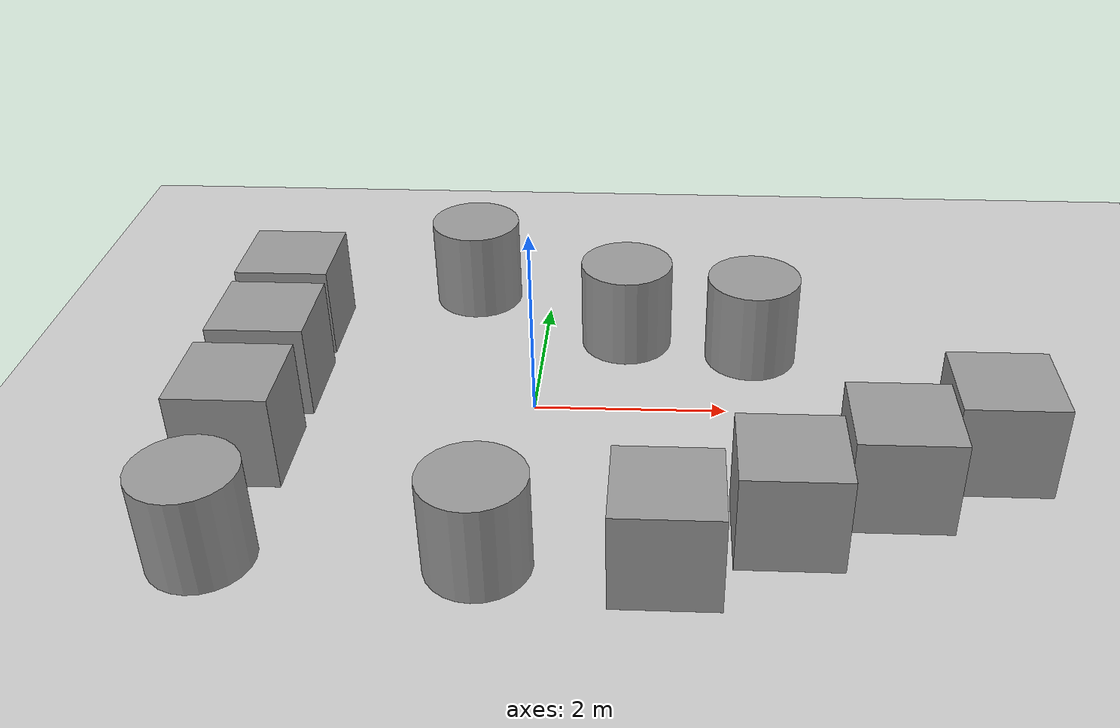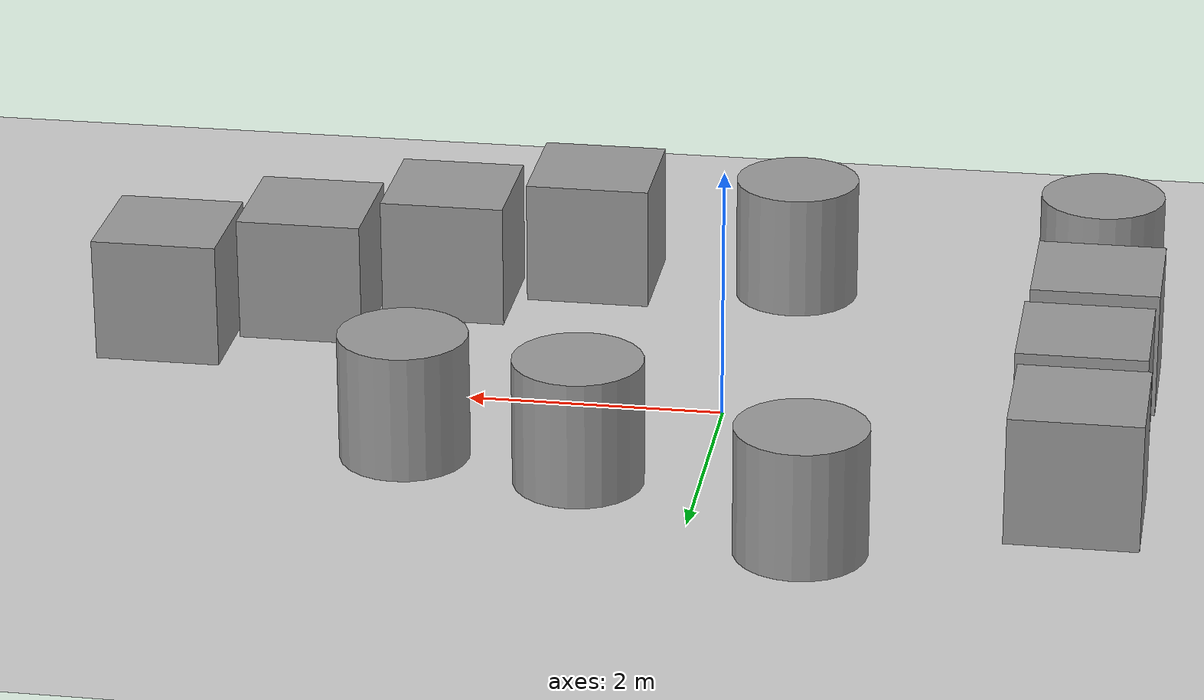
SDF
<sdf version="1.7">
 <world name="default">
  <light name="sun" type="directional">
   <pose>0 0 10 0 -0 0</pose>
   <diffuse>0.8 0.8 0.8 1</diffuse>
   <specular>0.2 0.2 0.2 1</specular>
   <attenuation>
    <range>1000</range>
    <constant>0.9</constant>
    <linear>0.01</linear>
    <quadratic>0.001</quadratic>
   </attenuation>
   <direction>-0.5 0.1 -0.9</direction>
  </light>
  <model name="ground_plane">
   <static>1</static>
   <link name="link">
    <collision name="collision">
     <geometry><plane><normal>0 0 1</normal><size>100 100</size></plane></geometry>
     <surface>
      <contact><collide_bitmask>65535</collide_bitmask></contact>
      <friction><ode><mu>100</mu><mu2>50</mu2></ode></friction>
     </surface>
    </collision>
    <visual name="visual">
     <cast_shadows>0</cast_shadows>
     <geometry><plane><normal>0 0 1</normal><size>100 100</size></plane></geometry>
     <material>
      <script><uri>file://media/materials/scripts/gazebo.material</uri><name>Gazebo/Grey</name></script>
     </material>
    </visual>
   </link>
  </model>
  <gravity>0 0 -9.8</gravity>
  <magnetic_field>6e-06 2.3e-05 -4.2e-05</magnetic_field>
  <atmosphere type="adiabatic"/>
  <physics type="ode">
   <max_step_size>0.001</max_step_size>
   <real_time_factor>1</real_time_factor>
   <real_time_update_rate>1000</real_time_update_rate>
  </physics>
  <scene><ambient>0.4 0.4 0.4 1</ambient><background>0.7 0.7 0.7 1</background><shadows>1</shadows></scene>
  <spherical_coordinates>
   <surface_model>EARTH_WGS84</surface_model>
   <latitude_deg>0</latitude_deg>
   <longitude_deg>0</longitude_deg>
   <elevation>0</elevation>
   <heading_deg>0</heading_deg>
  </spherical_coordinates>
  <model name="unit_box">
   <pose>1.39061 -2.50795 0.499995 -1e-05 -0 -0</pose>
   <link name="link">
    <inertial>
     <mass>1</mass>
     <inertia>
      <ixx>0.166667</ixx>
      <ixy>0</ixy>
      <ixz>0</ixz>
      <iyy>0.166667</iyy>
      <iyz>0</iyz>
      <izz>0.166667</izz>
     </inertia>
    </inertial>
    <collision name="collision"><geometry><box><size>1 1 1</size></box></geometry></collision>
    <visual name="visual">
     <geometry><box><size>1 1 1</size></box></geometry>
     <material>
      <script><name>Gazebo/Grey</name><uri>file://media/materials/scripts/gazebo.material</uri></script>
     </material>
    </visual>
   </link>
  </model>
  <model name="unit_box_0">
   <pose>2.49124 -1.96298 0.499995 0 1e-05 0</pose>
   <link name="link">
    <inertial>
     <mass>1</mass>
     <inertia>
      <ixx>0.166667</ixx>
      <ixy>0</ixy>
      <ixz>0</ixz>
      <iyy>0.166667</iyy>
      <iyz>0</iyz>
      <izz>0.166667</izz>
     </inertia>
    </inertial>
    <collision name="collision"><geometry><box><size>1 1 1</size></box></geometry></collision>
    <visual name="visual">
     <geometry><box><size>1 1 1</size></box></geometry>
     <material>
      <script><name>Gazebo/Grey</name><uri>file://media/materials/scripts/gazebo.material</uri></script>
     </material>
    </visual>
   </link>
  </model>
  <model name="unit_box_1">
   <pose>3.54974 -1.40444 0.499995 -1e-05 -0 -0</pose>
   <link name="link">
    <inertial>
     <mass>1</mass>
     <inertia>
      <ixx>0.166667</ixx>
      <ixy>0</ixy>
      <ixz>0</ixz>
      <iyy>0.166667</iyy>
      <iyz>0</iyz>
      <izz>0.166667</izz>
     </inertia>
    </inertial>
    <collision name="collision"><geometry><box><size>1 1 1</size></box></geometry></collision>
    <visual name="visual">
     <geometry><box><size>1 1 1</size></box></geometry>
     <material>
      <script><name>Gazebo/Grey</name><uri>file://media/materials/scripts/gazebo.material</uri></script>
     </material>
    </visual>
   </link>
  </model>
  <model name="unit_box_2">
   <pose>4.58817 -0.823104 0.499995 0 1e-05 0</pose>
   <link name="link">
    <inertial>
     <mass>1</mass>
     <inertia>
      <ixx>0.166667</ixx>
      <ixy>0</ixy>
      <ixz>0</ixz>
      <iyy>0.166667</iyy>
      <iyz>0</iyz>
      <izz>0.166667</izz>
     </inertia>
    </inertial>
    <collision name="collision"><geometry><box><size>1 1 1</size></box></geometry></collision>
    <visual name="visual">
     <geometry><box><size>1 1 1</size></box></geometry>
     <material>
      <script><name>Gazebo/Grey</name><uri>file://media/materials/scripts/gazebo.material</uri></script>
     </material>
    </visual>
   </link>
  </model>
  <model name="unit_cylinder">
   <pose>2.29565 1.0986 0.499998 3e-06 -4e-06 0</pose>
   <link name="link">
    <inertial>
     <mass>1</mass>
     <inertia><ixx>0.145833</ixx><ixy>0</ixy><ixz>0</ixz><iyy>0.145833</iyy><iyz>0</iyz><izz>0.125</izz></inertia>
    </inertial>
    <collision name="collision">
     <geometry><cylinder><radius>0.5</radius><length>1</length></cylinder></geometry>
    </collision>
    <visual name="visual">
     <geometry><cylinder><radius>0.5</radius><length>1</length></cylinder></geometry>
     <material>
      <script><name>Gazebo/Grey</name><uri>file://media/materials/scripts/gazebo.material</uri></script>
     </material>
    </visual>
   </link>
  </model>
  <model name="unit_cylinder_0">
   <pose>0.911907 1.36855 0.499992 -3e-06 4e-06 0</pose>
   <link name="link">
    <inertial>
     <mass>1</mass>
     <inertia><ixx>0.145833</ixx><ixy>0</ixy><ixz>0</ixz><iyy>0.145833</iyy><iyz>0</iyz><izz>0.125</izz></inertia>
    </inertial>
    <collision name="collision">
     <geometry><cylinder><radius>0.5</radius><length>1</length></cylinder></geometry>
    </collision>
    <visual name="visual">
     <geometry><cylinder><radius>0.5</radius><length>1</length></cylinder></geometry>
     <material>
      <script><name>Gazebo/Grey</name><uri>file://media/materials/scripts/gazebo.material</uri></script>
     </material>
    </visual>
   </link>
  </model>
  <model name="unit_cylinder_1">
   <pose>-0.27784 -2.48958 0.499998 3e-06 -4e-06 0</pose>
   <link name="link">
    <inertial>
     <mass>1</mass>
     <inertia><ixx>0.145833</ixx><ixy>0</ixy><ixz>0</ixz><iyy>0.145833</iyy><iyz>0</iyz><izz>0.125</izz></inertia>
    </inertial>
    <collision name="collision">
     <geometry><cylinder><radius>0.5</radius><length>1</length></cylinder></geometry>
    </collision>
    <visual name="visual">
     <geometry><cylinder><radius>0.5</radius><length>1</length></cylinder></geometry>
     <material>
      <script><name>Gazebo/Grey</name><uri>file://media/materials/scripts/gazebo.material</uri></script>
     </material>
    </visual>
   </link>
  </model>
  <model name="unit_cylinder_2">
   <pose>-2.76641 -2.49517 0.499992 -3e-06 -4e-06 -0</pose>
   <link name="link">
    <inertial>
     <mass>1</mass>
     <inertia><ixx>0.145833</ixx><ixy>0</ixy><ixz>0</ixz><iyy>0.145833</iyy><iyz>0</iyz><izz>0.125</izz></inertia>
    </inertial>
    <collision name="collision">
     <geometry><cylinder><radius>0.5</radius><length>1</length></cylinder></geometry>
    </collision>
    <visual name="visual">
     <geometry><cylinder><radius>0.5</radius><length>1</length></cylinder></geometry>
     <material>
      <script><name>Gazebo/Grey</name><uri>file://media/materials/scripts/gazebo.material</uri></script>
     </material>
    </visual>
   </link>
  </model>
  <model name="unit_box_3">
   <pose>-2.82144 -0.962029 0.499995 -1e-05 -0 -0</pose>
   <link name="link">
    <inertial>
     <mass>1</mass>
     <inertia>
      <ixx>0.166667</ixx>
      <ixy>0</ixy>
      <ixz>0</ixz>
      <iyy>0.166667</iyy>
      <iyz>0</iyz>
      <izz>0.166667</izz>
     </inertia>
    </inertial>
    <collision name="collision"><geometry><box><size>1 1 1</size></box></geometry></collision>
    <visual name="visual">
     <geometry><box><size>1 1 1</size></box></geometry>
     <material>
      <script><name>Gazebo/Grey</name><uri>file://media/materials/scripts/gazebo.material</uri></script>
     </material>
    </visual>
   </link>
  </model>
  <model name="unit_box_4">
   <pose>-2.79804 0.275582 0.499995 0 1e-05 0</pose>
   <link name="link">
    <inertial>
     <mass>1</mass>
     <inertia>
      <ixx>0.166667</ixx>
      <ixy>0</ixy>
      <ixz>0</ixz>
      <iyy>0.166667</iyy>
      <iyz>0</iyz>
      <izz>0.166667</izz>
     </inertia>
    </inertial>
    <collision name="collision"><geometry><box><size>1 1 1</size></box></geometry></collision>
    <visual name="visual">
     <geometry><box><size>1 1 1</size></box></geometry>
     <material>
      <script><name>Gazebo/Grey</name><uri>file://media/materials/scripts/gazebo.material</uri></script>
     </material>
    </visual>
   </link>
  </model>
  <model name="unit_box_5">
   <pose>-2.83096 1.47378 0.499995 -1e-05 -0 0</pose>
   <link name="link">
    <inertial>
     <mass>1</mass>
     <inertia>
      <ixx>0.166667</ixx>
      <ixy>0</ixy>
      <ixz>0</ixz>
      <iyy>0.166667</iyy>
      <iyz>0</iyz>
      <izz>0.166667</izz>
     </inertia>
    </inertial>
    <collision name="collision"><geometry><box><size>1 1 1</size></box></geometry></collision>
    <visual name="visual">
     <geometry><box><size>1 1 1</size></box></geometry>
     <material>
      <script><name>Gazebo/Grey</name><uri>file://media/materials/scripts/gazebo.material</uri></script>
     </material>
    </visual>
   </link>
  </model>
  <model name="unit_cylinder_3">
   <pose>-0.881669 2.32169 0.499997 3e-06 4e-06 -0</pose>
   <link name="link">
    <inertial>
     <mass>1</mass>
     <inertia><ixx>0.145833</ixx><ixy>0</ixy><ixz>0</ixz><iyy>0.145833</iyy><iyz>0</iyz><izz>0.125</izz></inertia>
    </inertial>
    <collision name="collision">
     <geometry><cylinder><radius>0.5</radius><length>1</length></cylinder></geometry>
    </collision>
    <visual name="visual">
     <geometry><cylinder><radius>0.5</radius><length>1</length></cylinder></geometry>
     <material>
      <script><name>Gazebo/Grey</name><uri>file://media/materials/scripts/gazebo.material</uri></script>
     </material>
    </visual>
   </link>
  </model>
 </world>
</sdf>
